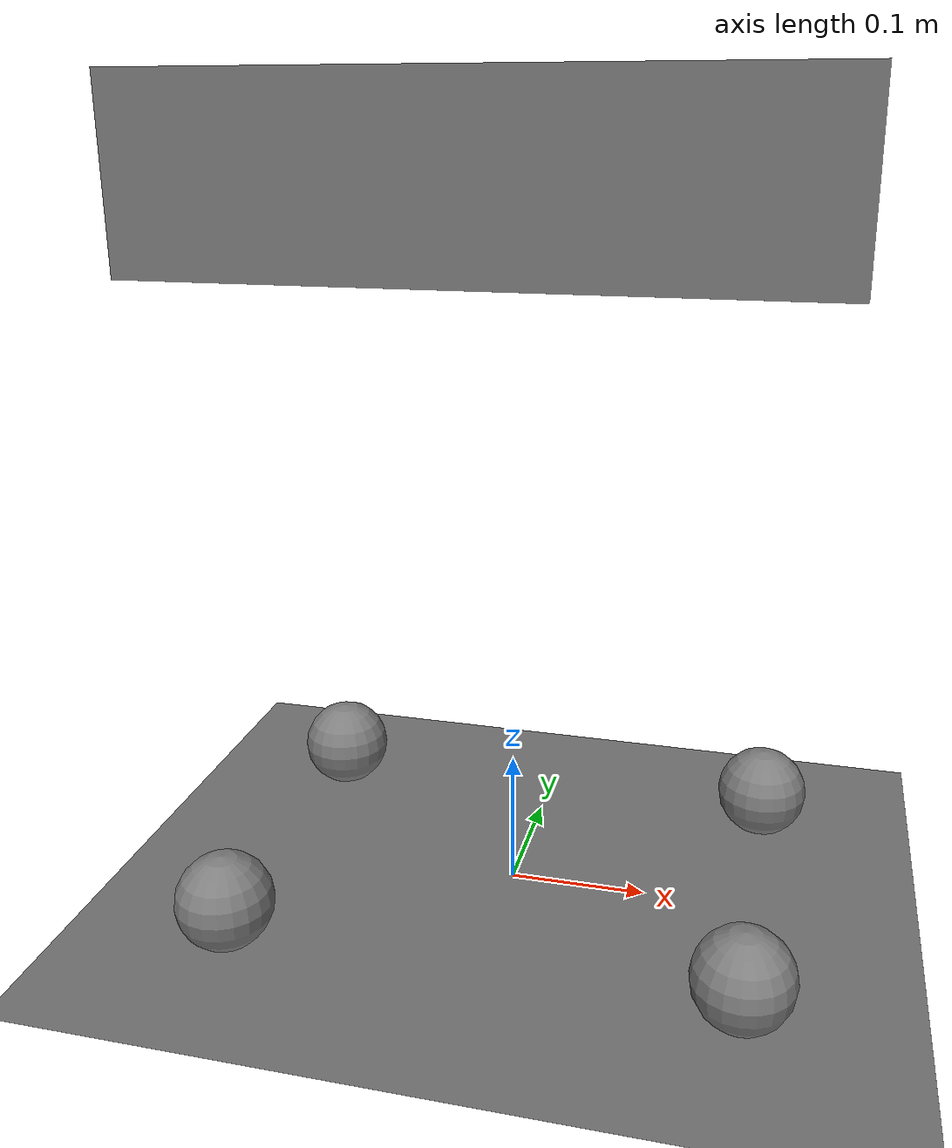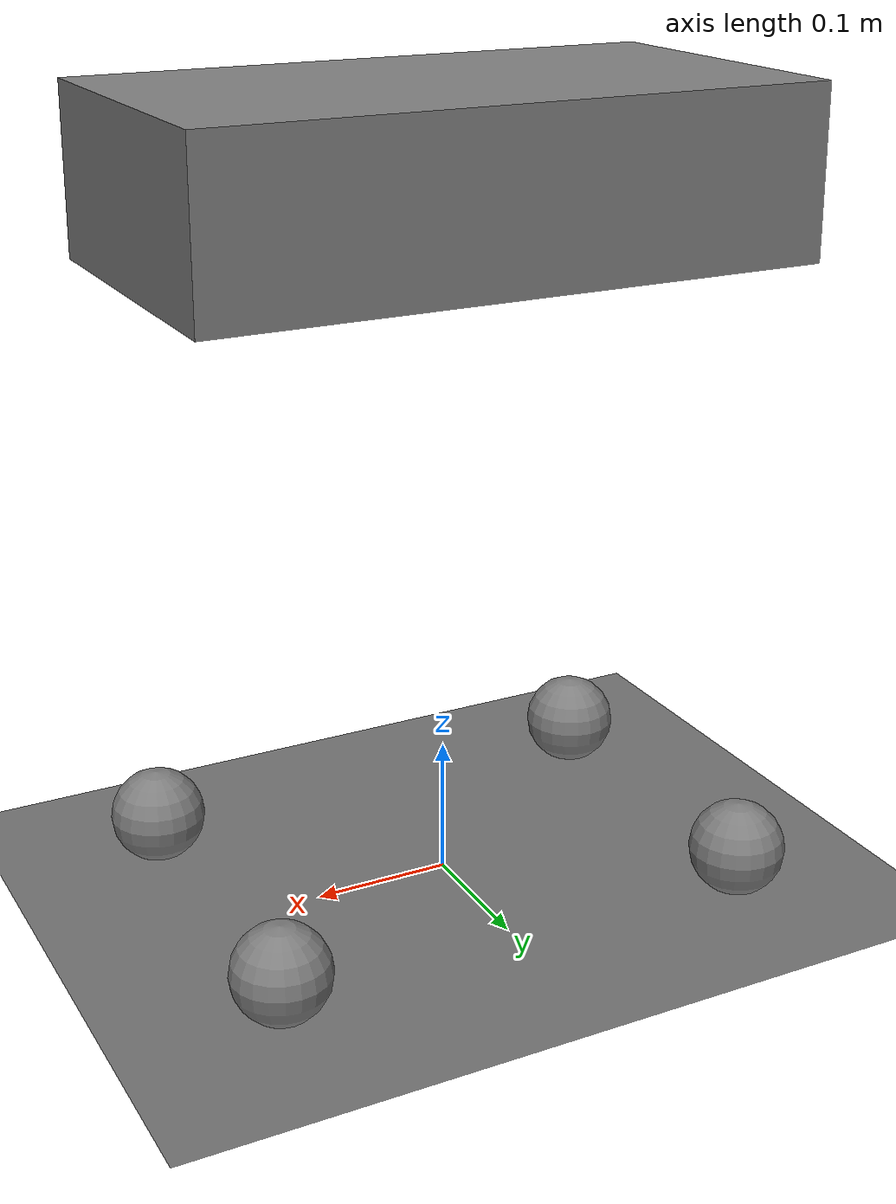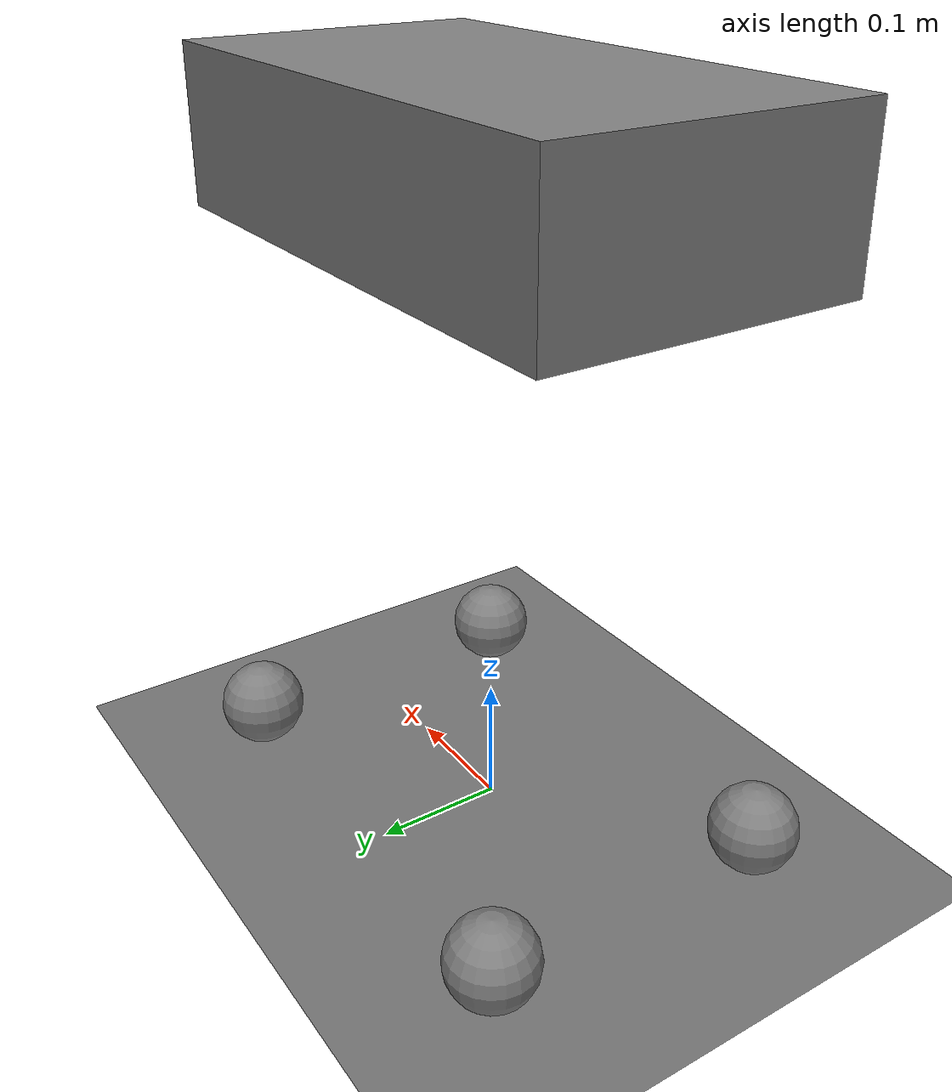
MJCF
<mujoco model="quadruped_contact_balance">
  <compiler angle="degree" coordinate="local"/>
  <option timestep="0.01" gravity="0 0 -9.81"/>
  <worldbody>
    <geom name="floor" type="plane" size="2 2 0.05" rgba="0.45 0.45 0.45 1"/>
    <body name="torso" pos="0 0 0.52">
      <joint name="root" type="free"/>
      <geom name="torso_geom" type="box" size="0.22 0.12 0.06" mass="8"/>
      <site name="com_site" pos="0 0 0" size="0.02"/>
      <body name="left_front_foot" pos="0.18 0.12 -0.49">
        <geom name="lf_contact" type="sphere" size="0.035" condim="3"/>
        <site name="lf_force_site" pos="0 0 0" size="0.015"/>
      </body>
      <body name="right_front_foot" pos="0.18 -0.12 -0.49">
        <geom name="rf_contact" type="sphere" size="0.035" condim="3"/>
        <site name="rf_force_site" pos="0 0 0" size="0.015"/>
      </body>
      <body name="left_rear_foot" pos="-0.18 0.12 -0.49">
        <geom name="lr_contact" type="sphere" size="0.035" condim="3"/>
        <site name="lr_force_site" pos="0 0 0" size="0.015"/>
      </body>
      <body name="right_rear_foot" pos="-0.18 -0.12 -0.49">
        <geom name="rr_contact" type="sphere" size="0.035" condim="3"/>
        <site name="rr_force_site" pos="0 0 0" size="0.015"/>
      </body>
    </body>
  </worldbody>
  <sensor>
    <framepos name="com_position" objtype="site" objname="com_site"/>
    <force name="lf_contact_force" site="lf_force_site"/>
    <force name="rf_contact_force" site="rf_force_site"/>
    <force name="lr_contact_force" site="lr_force_site"/>
    <force name="rr_contact_force" site="rr_force_site"/>
  </sensor>
</mujoco>
